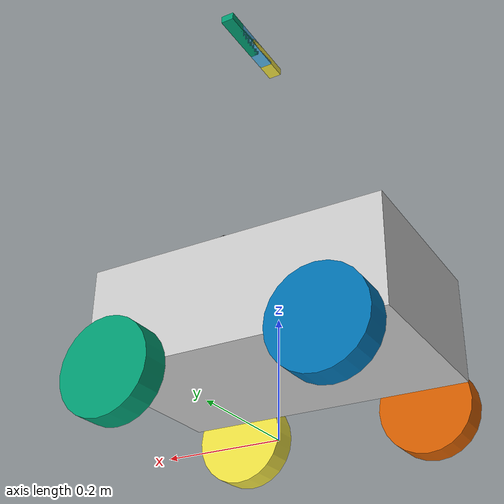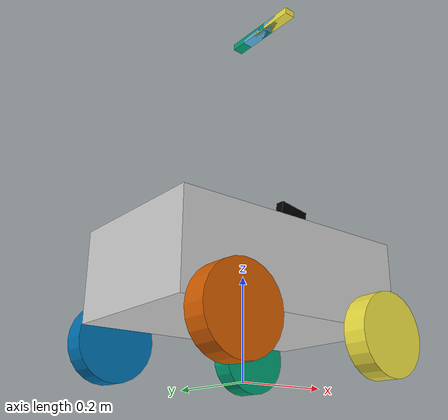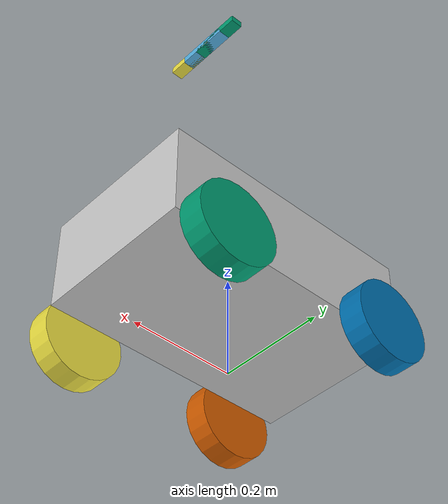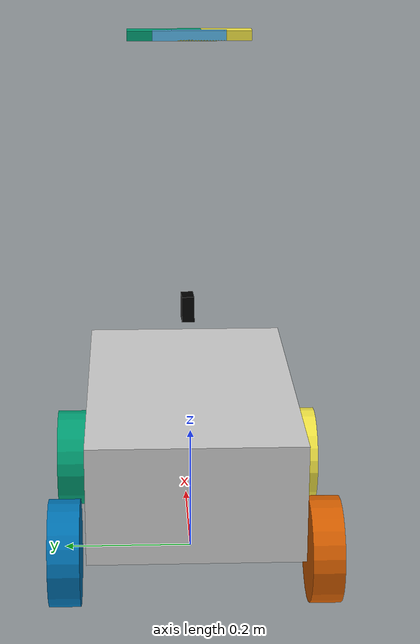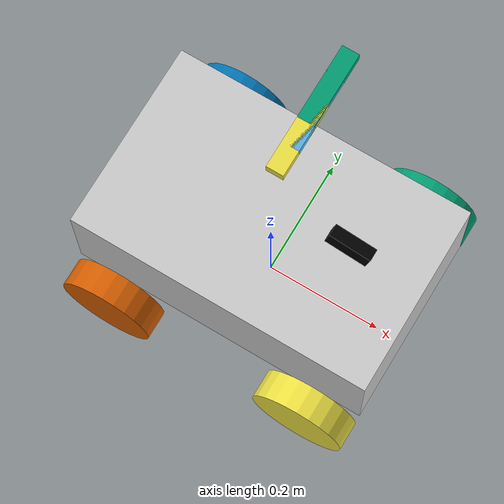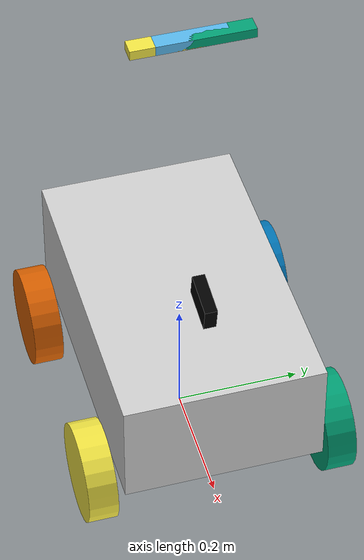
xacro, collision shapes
<?xml version="1.0"?>
<robot name="elsabot_4wd" xmlns:xacro="http://ros.org/wiki/xacro">

  <xacro:include filename="$(find elsabot_4wd)/urdf/4wd_properties.urdf.xacro" />
  <xacro:include filename="$(find elsabot_4wd)/urdf/mech/base.urdf.xacro" />
  <xacro:include filename="$(find elsabot_4wd)/urdf/mech/wheel.urdf.xacro" />
  <xacro:include filename="$(find elsabot_4wd)/urdf/sensors/imu.urdf.xacro" />
  <xacro:include filename="$(find elsabot_4wd)/urdf/sensors/gps.urdf.xacro" />
  <xacro:include filename="$(find elsabot_4wd)/urdf/sensors/generic_laser.urdf.xacro" />
  <!--xacro:include filename="$(find elsabot_4wd)/urdf/sensors/depth_sensor.urdf.xacro" /-->
  <xacro:include filename="$(find elsabot_4wd)/urdf/sensors/oakd_on_ptbase.urdf.xacro" />
  <xacro:include filename="$(find elsabot_4wd)/urdf/controllers/skid_steer.urdf.xacro" />
  <xacro:include filename="$(find elsabot_4wd)/urdf/sensors/nav_camera.urdf.xacro" />

  <xacro:base
    length="${base_length}"
    width="${base_width}"
    height="${base_height}"
    mass="${base_mass}"
    wheel_radius="${wheel_radius}"
    wheel_pos_z="${wheel_pos_z}"
/>

  <xacro:wheel
    side="front_left"
    radius="${wheel_radius}"
    width="${wheel_width}"
    pos_x="${wheel_pos_x}"
    pos_y="${wheel_pos_y}"
    pos_z="${wheel_pos_z}"
    mass="${wheel_mass}"
  />

  <xacro:wheel
    side="front_right"
    radius="${wheel_radius}"
    width="${wheel_width}"
    pos_x="${wheel_pos_x}"
    pos_y="${-wheel_pos_y}"
    pos_z="${wheel_pos_z}"
    mass="${wheel_mass}"
  />
  <xacro:wheel
    side="rear_left"
    radius="${wheel_radius}"
    width="${wheel_width}"
    pos_x="${-wheel_pos_x}"
    pos_y="${wheel_pos_y}"
    pos_z="${wheel_pos_z}"
    mass="${wheel_mass}"
  />

  <xacro:wheel
    side="rear_right"
    radius="${wheel_radius}"
    width="${wheel_width}"
    pos_x="${-wheel_pos_x}"
    pos_y="${-wheel_pos_y}"
    pos_z="${wheel_pos_z}"
    mass="${wheel_mass}"
  />

  <xacro:imu/>
  <xacro:gps/>

  <xacro:generic_laser>
    <xacro:insert_block name="laser_pose" />
  </xacro:generic_laser>

  <xacro:depth_sensor>
    <xacro:insert_block name="depth_sensor_pose" />
  </xacro:depth_sensor>

  <xacro:nav_camera/>

 <xacro:diff_drive_controller
    wheel_separation="${wheel_pos_y * 2}"
    wheel_radius="${wheel_radius}"
    wheel_torque="${wheel_torque}"
  />

  <gazebo>
    <plugin filename="gz-sim-sensors-system" name="gz::sim::systems::Sensors">
      <render_engine>ogre2</render_engine>
    </plugin>
    <plugin filename="gz-sim-imu-system" name="gz::sim::systems::Imu"/>
    <plugin filename="gz-sim-magnetometer-system" name="gz::sim::systems::Magnetometer"/>
    <plugin filename="gz-sim-navsat-system" name="gz::sim::systems::NavSat"/>
  </gazebo>

 </robot>

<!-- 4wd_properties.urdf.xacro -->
<robot xmlns:xacro="http://ros.org/wiki/xacro">
  <xacro:property name="base_length" value="0.510" />
  <xacro:property name="base_width" value="0.318" />
  <xacro:property name="base_height" value="0.180" />
  <xacro:property name="base_mass" value="10" />

  <xacro:property name="wheel_radius" value="0.0795" />
  <xacro:property name="wheel_width" value="0.047" />
  <xacro:property name="wheel_pos_x" value="0.175" />
  <xacro:property name="wheel_pos_y" value="0.1925" />
  <xacro:property name="wheel_pos_z" value="-0.1105" />
  <xacro:property name="wheel_mass" value="0.6" />
  <xacro:property name="wheel_torque" value="12" />

  <xacro:property name="laser_pose">
    <origin xyz="0.205 0 0.064" rpy="0 0 3.14"/>
  </xacro:property>

  <xacro:property name="depth_sensor_pose">
    <origin xyz="-0.065 0 0.255" rpy="0 0 0"/>
  </xacro:property>
</robot>

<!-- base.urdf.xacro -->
<robot xmlns:xacro="http://ros.org/wiki/xacro">
  <xacro:macro name="base" params="length width height mass wheel_radius wheel_pos_z">
    <link name="base_footprint"/>

    <link name="base_link">
      <visual>
        <origin xyz="0 0 0" rpy="0 0 0"/>
        <geometry>
          <!-- box size="${length} ${width} ${height}"/ -->
          <mesh filename="package://elsabot_4wd/meshes/elsabot_4wd.stl" scale="1.0 1.0 1.0"/>
        </geometry>
        <material name="gray">
          <color rgba="0.8 0.8 0.8 1.0"/>
        </material>
      </visual>

      <collision>
        <origin xyz="0 0 0" rpy="0 0 0"/>
        <geometry>
          <box size="${length} ${width} ${height}"/>
        </geometry>
      </collision>

      <inertial>
        <origin xyz="0 0 0" rpy="0 0 0"/>
        <mass value="${mass}"/>
        <inertia ixx="${(1/12) * mass * ((width  * width)  + (height * height))}" ixy="0.0" ixz="0.0"
                 iyy="${(1/12) * mass * ((length * length) + (height * height))}" iyz="0.0"
                 izz="${(1/12) * mass * ((length * length) + (width  * width))}"/>
      </inertial>
    </link>

    <gazebo reference="base_link">
      <visual>
        <material>
          <ambient>0.8392 0.6314 0.0 1.0</ambient>
          <diffuse>0.8392 0.6314 0.0 1.0</diffuse>
          <specular>0.99 0.99 0.99 1.0</specular>
          <emissive>0.0 0.0 0.0 0.0</emissive>
        </material>
      </visual>
    </gazebo>

    <joint name="base_to_footprint" type="fixed">
      <parent link="base_footprint"/>
      <child link="base_link"/>
      <origin xyz="0 0 ${wheel_radius - wheel_pos_z}" rpy="0 0 0"/>
    </joint>
  </xacro:macro>
</robot>

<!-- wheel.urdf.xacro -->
<robot xmlns:xacro="http://ros.org/wiki/xacro">
  <xacro:macro name="wheel" params="side radius width pos_x pos_y pos_z mass">
    <link name="${side}_wheel_link">
      <collision>
        <origin xyz="0 0 0" rpy="${pi/2} 0 0"/>
        <geometry>
          <cylinder radius="${radius}" length="${width}"/>
        </geometry>
      </collision>
      <surface>
        <friction>
          <ode>
            <mu>0.8</mu>
            <mu2>0.8</mu2>
          </ode>
        </friction>
      </surface>

      <inertial>
        <origin xyz="0 0 0" rpy="0 0 0"/>
        <mass value="${mass}"/>
        <inertia ixx="${(2/5) * mass * (radius * radius)}" ixy="0" ixz="0"
                 iyy="${(2/5) * mass * (radius * radius)}" iyz="0"
                 izz="${(2/5) * mass * (radius * radius)}" />
      </inertial>
    </link>
    <gazebo reference="${side}_wheel_link">
      <visual>
        <material>
          <ambient>0.1764 0.4588 0.8509 1.0</ambient>
          <diffuse>0.1764 0.4588 0.8509 1.0</diffuse>
          <specular>0.1764 0.4588 0.8509 1.0</specular>
          <emissive>0.0 0.0 0.0 0.0</emissive>
        </material>
      </visual>
    </gazebo>
    <joint name="${side}_wheel_joint" type="continuous">
      <axis xyz="0 1 0" />
      <parent link="base_link"/>
      <child link="${side}_wheel_link"/>
      <origin xyz="${pos_x} ${pos_y} ${pos_z}" rpy="0 0 0"/>
    </joint>
    <gazebo reference="${side}_wheel_joint">
    </gazebo>

  </xacro:macro>
</robot>

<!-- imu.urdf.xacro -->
<robot xmlns:xacro="http://ros.org/wiki/xacro">
  <xacro:macro name="imu">
    <link name="imu_link">
      <inertial>
        <origin xyz="0 0 0" rpy="0 0 0"/>
        <mass value="0.1"/>
        <inertia ixx="0.1" ixy="0" ixz="0"
                 iyy="0.1" iyz="0"
                 izz="0.1" />
      </inertial>
    </link>

    <joint name="imu_to_base_link" type="fixed">
      <parent link="base_link"/>
      <child link="imu_link"/>
      <origin xyz="0.25 0.0 0.210" rpy="0 0 0"/>
    </joint>

    <gazebo reference="imu_link">
      <gravity>true</gravity>
      <sensor name="imu_link" type="imu">
        <topic>imu/data</topic>
        <gz_frame_id>imu_link</gz_frame_id>
        <always_on>1</always_on>
        <update_rate>20</update_rate>
        <visualize>true</visualize>
        <gaussianNoise>0</gaussianNoise>
        <xyzOffset>0 0 0</xyzOffset>
        <rpyOffset>0 0 0</rpyOffset>
        <initialOrientationAsReference>false</initialOrientationAsReference>
      </sensor>
      <sensor name="magnetometer" type="magnetometer">
        <always_on>1</always_on>
        <update_rate>20</update_rate>
        <visualize>true</visualize>
        <topic>imu/mag</topic>
        <gz_frame_id>imu_link</gz_frame_id>
        <enable_metrics>true</enable_metrics>
        <magnetometer>
          <x>
            <noise type="none">
            <!--noise type="gaussian"-->
              <mean>0.0</mean>
              <stddev>0.01</stddev>
            </noise>
          </x>
          <y>
            <noise type="none">
            <!--noise type="gaussian"-->
              <mean>0.0</mean>
              <stddev>0.01</stddev>
            </noise>
          </y>
          <z>
            <noise type="none">
            <!--noise type="gaussian"-->
              <mean>0.0</mean>
              <stddev>0.01</stddev>
            </noise>
          </z>
        </magnetometer>
      </sensor>
    </gazebo>
  </xacro:macro>
</robot>

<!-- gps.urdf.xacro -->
<robot xmlns:xacro="http://ros.org/wiki/xacro">
  <xacro:macro name="gps">
    <link name="gps_link">
      <inertial>
        <origin xyz="0 0 0" rpy="0 0 0"/>
        <mass value="0.1"/>
        <inertia ixx="0.1" ixy="0" ixz="0"
                 iyy="0.1" iyz="0"
                 izz="0.1" />
      </inertial>
    </link>

    <joint name="gps_to_base_link" type="fixed">
      <parent link="base_link"/>
      <child link="gps_link"/>
      <origin xyz="-0.195 0.0 0.685" rpy="0 0 0" />
    </joint>

    <gazebo reference="gps_link">
      <sensor name="gps_link" type="navsat">
        <always_on>1</always_on>
        <update_rate>2</update_rate>
        <topic>navsat</topic>
        <gz_frame_id>gps_link</gz_frame_id>
      </sensor>
    </gazebo>

  </xacro:macro>
</robot>

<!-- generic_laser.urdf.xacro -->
<robot xmlns:xacro="http://ros.org/wiki/xacro">
  <xacro:include filename="$(find elsabot_4wd)/urdf/sensors/laser.urdf.xacro" />

  <xacro:macro name="generic_laser" params="*origin">
    <xacro:laser
      update_rate="10"
      ray_count="360"
      min_angle="-3.1416"
      max_angle="3.1416"
      min_range="0.50"
      max_range="12.0"
      frame_id="laser"
      topic_name="scan"
    >
      <xacro:insert_block name="origin" />
    </xacro:laser>
  </xacro:macro>

  <xacro:macro name="generic_base_laser" params="*origin">
    <xacro:laser
      update_rate="10"
      ray_count="360"
      min_angle="-3.1416"
      max_angle="3.1416"
      min_range="0.50"
      max_range="5.5"
      frame_id="base_laser"
      topic_name="base/scan"
    >
      <xacro:insert_block name="origin" />
    </xacro:laser>
  </xacro:macro>
</robot>

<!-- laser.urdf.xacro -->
<robot xmlns:xacro="http://ros.org/wiki/xacro">
  <xacro:property name="M_PI" value="3.1415926535897931" />
  <xacro:macro name="laser" params="*origin update_rate ray_count min_angle max_angle min_range max_range frame_id topic_name">
    <link name="${frame_id}">
      <visual>
        <origin xyz="0 0 -0.025" rpy="0 0 0"/>
        <geometry>
          <cylinder radius="0.0375" length="0.05"/>
        </geometry>
        <material name="green">
            <color rgba="0.0 0.0 0.0 1.0"/>
        </material>
      </visual>
      <collision>
        <origin xyz="0 0 -0.025" rpy="0 0 0"/>
        <geometry>
          <cylinder radius="0.0375" length="0.07"/>
        </geometry>
      </collision>

      <inertial>
        <origin xyz="0 0 0" rpy="0 0 0"/>
        <mass value="0.1"/>
        <inertia ixx="${(2/5) * 0.1 * (0.0375 * 0.0375)}" ixy="0" ixz="0"
                 iyy="${(2/5) * 0.1 * (0.0375 * 0.0375)}" iyz="0"
                 izz="${(2/5) * 0.1 * (0.0375 * 0.0375)}" />
      </inertial>
    </link>

    <gazebo reference="${frame_id}">
      <visual>
        <material>
          <ambient>0.003 0.639 0.223 1.0</ambient>
          <diffuse>0.003 0.639 0.223 1.0</diffuse>
          <specular>0.003 0.639 0.223 1.0</specular>
          <emissive>0.0 0.0 0.0 0.0</emissive>
        </material>
      </visual>
    </gazebo>

    <joint name="${frame_id}_to_base_link" type="fixed">
      <parent link="base_link"/>
      <child link="${frame_id}"/>
      <xacro:insert_block name="origin" />
    </joint>

    <gazebo reference="${frame_id}">
      <sensor name="${frame_id}" type='gpu_lidar'>
        <topic>${topic_name}</topic>
        <gz_frame_id>${frame_id}</gz_frame_id>
        <update_rate>10</update_rate>
        <lidar>
          <scan>
            <horizontal>
              <samples>${ray_count}</samples>
              <resolution>1</resolution>
              <min_angle>${min_angle}</min_angle>
              <max_angle>${max_angle}</max_angle>
            </horizontal>
            <vertical>
              <samples>1</samples>
              <resolution>0.01</resolution>
              <min_angle>0.0</min_angle>
              <max_angle>0.0</max_angle>
            </vertical>
          </scan>
          <range>
            <min>${min_range}</min>
            <max>${max_range}</max>
            <resolution>0.01</resolution>
          </range>
        </lidar>
        <alwaysOn>1</alwaysOn>
        <visualize>true</visualize>
      </sensor>
    </gazebo>
  </xacro:macro>
</robot>

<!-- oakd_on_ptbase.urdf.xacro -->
<robot xmlns:xacro="http://ros.org/wiki/xacro">
  <xacro:property name="M_PI" value="3.1415926535897931" />
  <xacro:macro name="depth_sensor" params="*origin">

    <link name="oakd_center_camera">
      <inertial>
        <mass value="0.01" />
        <origin xyz="0.055 0.30 0.0"/>
        <inertia ixx="0.001" ixy="0.0" ixz="0.0" iyy="0.001" iyz="0.0" izz="0.001" />
      </inertial>
      <collision>
        <origin xyz="0 0 0" rpy="0 0 0" />
        <geometry>
          <box size="0.025 0.110 0.015" />
        </geometry>
      </collision>
    </link>

    <link name="oakd_left_camera">
      <inertial>
        <mass value="0.01" />
        <origin xyz="0.055 0.30 0.0"/>
        <inertia ixx="0.001" ixy="0.0" ixz="0.0" iyy="0.001" iyz="0.0" izz="0.001" />
      </inertial>
      <collision>
        <origin xyz="0 0 0" rpy="0 0 0" />
        <geometry>
          <box size="0.025 0.110 0.015" />
        </geometry>
      </collision>
    </link>

    <link name="oakd_right_camera">
      <inertial>
        <mass value="0.01" />
        <origin xyz="0.055 0.30 0.0"/>
        <inertia ixx="0.001" ixy="0.0" ixz="0.0" iyy="0.001" iyz="0.0" izz="0.001" />
      </inertial>
      <collision>
        <origin xyz="0 0 0" rpy="0 0 0" />
        <geometry>
          <box size="0.025 0.110 0.015" />
        </geometry>
      </collision>
    </link>

    <joint name="cam_pan_joint" type="revolute">
      <origin xyz="-0.030 0.0 0.535" rpy="0 0 0" />
      <axis xyz="0 0 1"/>
      <limit upper="1.57" lower="-1.57" effort="10" velocity="10"/>
      <parent link="base_link" />
      <child link="cam_pan_to_tilt_link" />
    </joint>

    <link name="cam_pan_to_tilt_link">
    <inertial>
      <mass value="0.01" />
      <origin xyz="0 0 0" />
      <inertia ixx="0.001" ixy="0.0" ixz="0.0" iyy="0.001" iyz="0.0" izz="0.001" />
    </inertial>
    </link>

    <joint name="cam_tilt_joint" type="revolute">
      <origin xyz="0.0077 0.0 0.021" rpy="0 0 0" />
      <axis xyz="0 1 0"/>
      <limit upper="1.57" lower="-1.57" effort="10" velocity="10"/>
      <parent link="cam_pan_to_tilt_link" />
      <child link="cam_tilt_to_oakd_base_link" />
    </joint>

    <link name="cam_tilt_to_oakd_base_link">
      <inertial>
        <mass value="0.01" />
        <origin xyz="0 0 0" />
        <inertia ixx="0.001" ixy="0.0" ixz="0.0" iyy="0.001" iyz="0.0" izz="0.001" />
      </inertial>
    </link>

    <joint name="oakd_base_joint" type="fixed">
      <origin xyz="0.083 0 0.063" rpy="0 0 0" />
      <parent link="cam_tilt_to_oakd_base_link" />
      <child link="oakd_base_link" />
    </joint>

    <link name="oakd_base_link">
      <visual>
        <origin xyz="0 0 0" rpy="${pi/2} 0 ${pi/2}"/>
        <geometry>
          <!-- box size="${length} ${width} ${height}"/ -->
          <mesh filename="package://elsabot_4wd/meshes/oakd.stl" scale="1.0 1.0 1.0"/>
        </geometry>
        <material name="black">
          <color rgba="0.0 0.0 0.0 1.0"/>
        </material>
      </visual>

      <inertial>
        <mass value="0.01" />
        <origin xyz="0 0 0" />
        <inertia ixx="0.001" ixy="0.0" ixz="0.0" iyy="0.001" iyz="0.0" izz="0.001" />
      </inertial>
    </link>

    <joint name="oakd_center_camera_joint" type="fixed">
      <origin xyz="0 0 0" rpy="0 0 0" />
      <parent link="oakd_base_link" />
      <child link="oakd_center_camera" />
    </joint>

    <joint name="oakd_left_camera_joint" type="fixed">
      <origin xyz="0 0.0375 0" rpy="0 0 0" />
      <parent link="oakd_base_link" />
      <child link="oakd_left_camera" />
    </joint>

    <joint name="oakd_right_camera_joint" type="fixed">
      <origin xyz="0 -0.0375 0" rpy="0 0 0" />
      <parent link="oakd_base_link" />
      <child link="oakd_right_camera" />
    </joint>

    <!-- https://github.com/ros-simulation/gazebo_ros_pkgs/wiki/ROS-2-Migration:-Camera#gazebo_ros_camera -->

  </xacro:macro>
</robot>

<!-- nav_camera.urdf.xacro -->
<robot xmlns:xacro="http://ros.org/wiki/xacro">
  <xacro:property name="M_PI" value="3.1415926535897931" />
  <xacro:macro name="nav_camera">

    <link name="nav_camera_link">
      <visual>
        <origin xyz="0 0 0" rpy="0 0 0"/>
        <geometry>
          <box size="0.02 0.07 0.04"/>
        </geometry>
        <material name="black">
          <color rgba="0.0 0.0 0.0 1.0"/>
        </material>
      </visual>

      <inertial>
        <mass value="0.01" />
        <origin xyz="0 0 0"/>
        <inertia ixx="0.001" ixy="0.0" ixz="0.0" iyy="0.001" iyz="0.0" izz="0.001" />
      </inertial>
      <collision>
        <origin xyz="0 0 0" rpy="0 0 0" />
        <geometry>
          <box size="0.070 0.020 0.040" />
        </geometry>
      </collision>
    </link>

    <joint name="nav_cam_joint" type="fixed">
      <parent link="base_link"/>
      <child link="nav_camera_link"/>
      <origin xyz="0.135 0.0 0.170" rpy="0 0.174 0"/>
    </joint>

    <!-- https://github.com/ros-simulation/gazebo_ros_pkgs/wiki/ROS-2-Migration:-Camera#gazebo_ros_camera -->
    <gazebo reference="nav_camera_link">
      <sensor name="camera" type="camera">
        <always_on>true</always_on>
        <update_rate>10.0</update_rate>

        <gz_frame_id>nav_camera_link_optical</gz_frame_id>
        <topic>nav_camera/image</topic>
        <horizontal_fov>1.50098</horizontal_fov>
        <image>
            <width>320</width>
            <height>240</height>
            <format>R8G8B8</format>
        </image>
        <clip>
            <near>0.02</near>
            <far>300</far>
        </clip>

      </sensor>
    </gazebo>

  </xacro:macro>
</robot>
